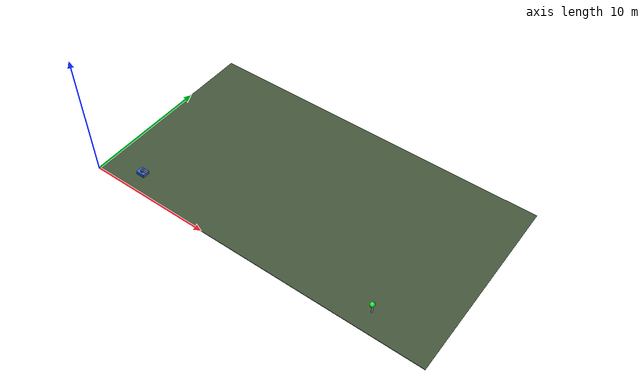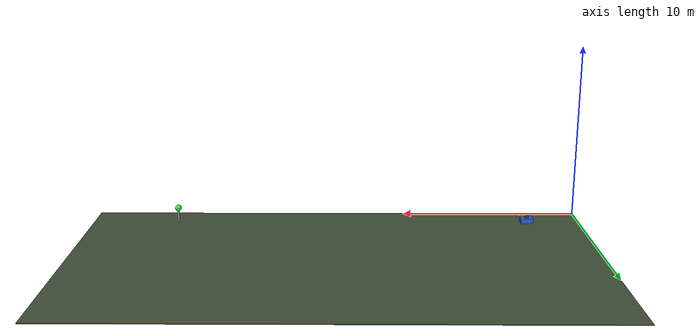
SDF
<?xml version="1.0" ?>
<!-- 本队 Jazzy + Gazebo Harmonic 8 吊射可视化。不编 ITL Fortress 仿真栈。 -->
<sdf version="1.8">
  <world name="heavy_lob">
    <physics name="1ms" type="ignored">
      <max_step_size>0.001</max_step_size>
      <real_time_factor>1.0</real_time_factor>
    </physics>
    <plugin filename="gz-sim-physics-system" name="gz::sim::systems::Physics"/>
    <plugin filename="gz-sim-user-commands-system" name="gz::sim::systems::UserCommands"/>
    <plugin filename="gz-sim-scene-broadcaster-system" name="gz::sim::systems::SceneBroadcaster"/>

    <gravity>0 0 -9.8</gravity>
    <magnetic_field>6e-06 2.3e-05 -4.2e-05</magnetic_field>
    <atmosphere type="adiabatic"/>
    <scene>
      <ambient>0.5 0.5 0.5 1</ambient>
      <background>0.15 0.18 0.22 1</background>
      <shadows>true</shadows>
    </scene>

    <light type="directional" name="sun">
      <cast_shadows>true</cast_shadows>
      <pose>8 0 12 0 0 0</pose>
      <diffuse>1 1 1 1</diffuse>
      <specular>0.4 0.4 0.4 1</specular>
      <attenuation>
        <range>1000</range>
        <constant>0.9</constant>
        <linear>0.01</linear>
        <quadratic>0.001</quadratic>
      </attenuation>
      <direction>-0.4 0.2 -0.9</direction>
    </light>

    <gui fullscreen="false">
      <plugin name="3D View" filename="GzScene3D">
        <gz-gui>
          <title>3D View</title>
          <property type="bool" key="showTitleBar">0</property>
          <property type="string" key="state">docked</property>
        </gz-gui>
        <engine>ogre2</engine>
        <scene>scene</scene>
        <ambient_light>0.5 0.5 0.5</ambient_light>
        <background_color>0.15 0.18 0.22</background_color>
        <camera_pose>10 -12 7 0 0.45 1.25</camera_pose>
      </plugin>
      <plugin name="World control" filename="WorldControl">
        <gz-gui>
          <title>World control</title>
          <property type="bool" key="showTitleBar">0</property>
          <property type="string" key="state">floating</property>
        </gz-gui>
        <play_pause>1</play_pause>
        <step>1</step>
        <start_paused>0</start_paused>
      </plugin>
      <plugin name="World stats" filename="WorldStats">
        <gz-gui>
          <title>World stats</title>
          <property type="bool" key="showTitleBar">0</property>
          <property type="string" key="state">floating</property>
        </gz-gui>
        <sim_time>1</sim_time>
        <real_time>1</real_time>
        <real_time_factor>1</real_time_factor>
      </plugin>
    </gui>

    <!-- RM 场地底板：原点在场角，车在 (3, 1.5)，基地在 (23.125, 1.510) -->
    <model name="field">
      <static>true</static>
      <pose>14 7.5 0 0 0 0</pose>
      <link name="link">
        <collision name="collision">
          <geometry>
            <box>
              <size>28 15 0.04</size>
            </box>
          </geometry>
        </collision>
        <visual name="visual">
          <geometry>
            <box>
              <size>28 15 0.04</size>
            </box>
          </geometry>
          <material>
            <ambient>0.18 0.22 0.18 1</ambient>
            <diffuse>0.25 0.32 0.22 1</diffuse>
          </material>
        </visual>
      </link>
    </model>

    <!-- 先验基地点可视化 -->
    <model name="base_target">
      <static>true</static>
      <pose>23.125 1.510 0 0 0 0</pose>
      <link name="link">
        <visual name="pole">
          <pose>0 0 0.42 0 0 0</pose>
          <geometry>
            <cylinder>
              <radius>0.06</radius>
              <length>0.84</length>
            </cylinder>
          </geometry>
          <material>
            <ambient>0.4 0.4 0.4 1</ambient>
            <diffuse>0.6 0.6 0.6 1</diffuse>
          </material>
        </visual>
        <visual name="light">
          <pose>0 0 0.84 0 0 0</pose>
          <geometry>
            <sphere>
              <radius>0.18</radius>
            </sphere>
          </geometry>
          <material>
            <ambient>0.0 0.9 0.2 1</ambient>
            <diffuse>0.1 1.0 0.2 1</diffuse>
            <emissive>0.0 0.6 0.1 1</emissive>
          </material>
        </visual>
      </link>
    </model>

    <model name="heavy_hero">
      <pose>3 1.5 0.15 0 0 0</pose>
      <self_collide>false</self_collide>
      <link name="base_link">
        <inertial>
          <mass>40</mass>
          <inertia>
            <ixx>1.2</ixx>
            <iyy>1.4</iyy>
            <izz>1.5</izz>
            <ixy>0</ixy>
            <ixz>0</ixz>
            <iyz>0</iyz>
          </inertia>
        </inertial>
        <visual name="chassis">
          <geometry>
            <box>
              <size>0.70 0.55 0.30</size>
            </box>
          </geometry>
          <material>
            <ambient>0.1 0.25 0.55 1</ambient>
            <diffuse>0.15 0.40 0.85 1</diffuse>
          </material>
        </visual>
        <collision name="chassis">
          <geometry>
            <box>
              <size>0.70 0.55 0.30</size>
            </box>
          </geometry>
        </collision>
      </link>

      <link name="yaw_link">
        <pose>0 0 0.20 0 0 0</pose>
        <inertial>
          <mass>4</mass>
          <inertia>
            <ixx>0.05</ixx>
            <iyy>0.05</iyy>
            <izz>0.04</izz>
            <ixy>0</ixy>
            <ixz>0</ixz>
            <iyz>0</iyz>
          </inertia>
        </inertial>
        <visual name="yaw">
          <geometry>
            <cylinder>
              <radius>0.14</radius>
              <length>0.10</length>
            </cylinder>
          </geometry>
          <material>
            <ambient>0.15 0.15 0.18 1</ambient>
            <diffuse>0.25 0.25 0.30 1</diffuse>
          </material>
        </visual>
      </link>

      <link name="pitch_link">
        <pose>0.05 0 0.25 0 0 0</pose>
        <inertial>
          <mass>2</mass>
          <inertia>
            <ixx>0.02</ixx>
            <iyy>0.08</iyy>
            <izz>0.08</izz>
            <ixy>0</ixy>
            <ixz>0</ixz>
            <iyz>0</iyz>
          </inertia>
        </inertial>
        <visual name="barrel">
          <pose>0.28 0 0 0 1.5708 0</pose>
          <geometry>
            <cylinder>
              <radius>0.045</radius>
              <length>0.55</length>
            </cylinder>
          </geometry>
          <material>
            <ambient>0.7 0.35 0.05 1</ambient>
            <diffuse>0.95 0.45 0.08 1</diffuse>
          </material>
        </visual>
      </link>

      <joint name="world_fixed" type="fixed">
        <parent>world</parent>
        <child>base_link</child>
      </joint>
      <joint name="yaw_joint" type="revolute">
        <parent>base_link</parent>
        <child>yaw_link</child>
        <axis>
          <xyz>0 0 1</xyz>
          <limit>
            <lower>-3.14</lower>
            <upper>3.14</upper>
          </limit>
          <dynamics>
            <damping>1.0</damping>
          </dynamics>
        </axis>
      </joint>
      <joint name="pitch_joint" type="revolute">
        <parent>yaw_link</parent>
        <child>pitch_link</child>
        <axis>
          <xyz expressed_in="__model__">0 1 0</xyz>
          <limit>
            <lower>-1.60</lower>
            <upper>0.20</upper>
          </limit>
          <dynamics>
            <damping>1.0</damping>
          </dynamics>
        </axis>
      </joint>

      <plugin filename="gz-sim-joint-position-controller-system"
              name="gz::sim::systems::JointPositionController">
        <joint_name>yaw_joint</joint_name>
        <topic>yaw_cmd</topic>
        <p_gain>40</p_gain>
        <i_gain>0.2</i_gain>
        <d_gain>4</d_gain>
      </plugin>
      <plugin filename="gz-sim-joint-position-controller-system"
              name="gz::sim::systems::JointPositionController">
        <joint_name>pitch_joint</joint_name>
        <topic>pitch_cmd</topic>
        <p_gain>40</p_gain>
        <i_gain>0.2</i_gain>
        <d_gain>4</d_gain>
      </plugin>
    </model>
  </world>
</sdf>
